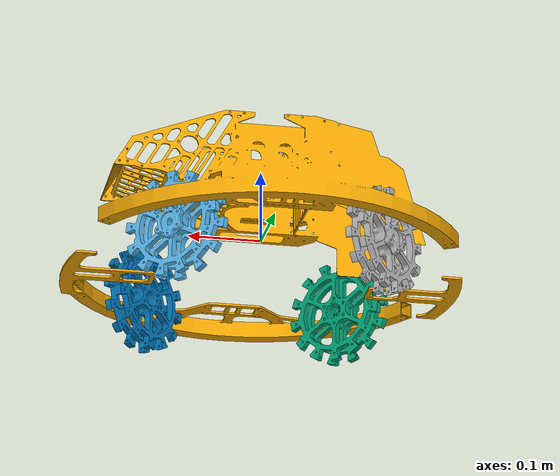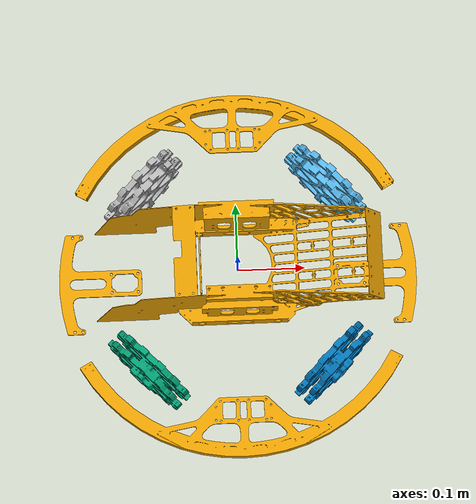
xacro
<?xml version="1.0"?>
<!-- only for ros-control,without gazebo -->
<robot xmlns:xacro="http://www.ros.org/wiki/xacro" name="hero">

    <xacro:arg name="load_chassis" default="true"/>
    <xacro:arg name="use_simulation" default="true"/>
    <xacro:arg name="roller_type" default="realistic"/>

    <xacro:if value="$(arg load_chassis)">
        <xacro:include filename="$(find joint_description)/urdf/kobe/chassis.urdf.xacro"/>
        <xacro:chassis roller_type="$(arg roller_type)"/>
    </xacro:if>

</robot>

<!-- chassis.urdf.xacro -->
<robot xmlns:xacro="http://www.ros.org/wiki/xacro">

  <xacro:include filename="$(find joint_description)/urdf/kobe/omni_wheel.urdf.xacro"/>

  <!-- https://upload.wikimedia.org/wikipedia/commons/5/52/Wheelbase_and_Track.png -->
  <xacro:property name="chassis_radius" value="0.196"/>
  <xacro:property name="wheel_offset_z" value="-0.04373"/>

  <xacro:macro name="chassis" params="roller_type">

      <link name="base_link">
          <inertial>
              <mass value="12.326"/>
              <origin xyz="-0.000932  -0.000668  -0.01"/>
              <inertia ixx="1.924e-1" ixy="-6.458e-4" ixz="5.951352e-3" iyy="2.473e-1"
                       iyz="-7.22e-4" izz="3.187e-1"/>
          </inertial>
          <visual>
              <origin xyz="0 0 0" rpy="0 0 0"/>
              <geometry>
                  <mesh filename="package://rm_description/meshes/standard/base.stl" scale="0.001 0.001 0.001"/>
              </geometry>
          </visual>
          <collision>
              <origin xyz="0 0 0" rpy="0 0 0"/>
              <geometry>
                  <box size="0.392 0.392 0.2"/>
              </geometry>
          </collision>
      </link>

      <xacro:omni_wheel prefix="left_front" connected_to="base_link"
                        wheel_x_offset="${chassis_radius/sqrt(2)}" wheel_y_offset="${chassis_radius/sqrt(2)}"
                        wheel_z_offset="${wheel_offset_z}" rotation_degree="${3*pi/4}" roller_type="${roller_type}"
                        max_effort="5" max_velocity="50"
      />
      <xacro:omni_wheel prefix="right_front" connected_to="base_link"
                        wheel_x_offset="${chassis_radius/sqrt(2)}" wheel_y_offset="${-chassis_radius/sqrt(2)}"
                        wheel_z_offset="${wheel_offset_z}" rotation_degree="${pi/4}" roller_type="${roller_type}"
                        max_effort="5" max_velocity="50"
      />
      <xacro:omni_wheel prefix="left_back" connected_to="base_link"
                        wheel_x_offset="${-chassis_radius/sqrt(2)}" wheel_y_offset="${chassis_radius/sqrt(2)}"
                        wheel_z_offset="${wheel_offset_z}" rotation_degree="${-3*pi/4}" roller_type="${roller_type}"
                        max_effort="5" max_velocity="50"
      />
      <xacro:omni_wheel prefix="right_back" connected_to="base_link"
                        wheel_x_offset="${-chassis_radius/sqrt(2)}" wheel_y_offset="${-chassis_radius/sqrt(2)}"
                        wheel_z_offset="${wheel_offset_z}" rotation_degree="${-pi/4}" roller_type="${roller_type}"
                        max_effort="5" max_velocity="50"
      />
      <xacro:wheel_transmission prefix="left_front" mechanical_reduction="19.2032"/>
      <xacro:wheel_transmission prefix="right_front" mechanical_reduction="19.2032"/>
      <xacro:wheel_transmission prefix="left_back" mechanical_reduction="19.2032"/>
      <xacro:wheel_transmission prefix="right_back" mechanical_reduction="19.2032"/>

  </xacro:macro>

</robot>

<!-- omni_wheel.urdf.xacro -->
<robot xmlns:xacro="http://www.ros.org/wiki/xacro" name="omni_wheel">

  <xacro:property name="wheel_radius" value="0.0762"/>
  <xacro:property name="roller_radius" value="0.009"/>

  <xacro:macro name="roller" params="prefix suffix theta roller_type">
      <xacro:if value="${suffix % 2 == 1}">
          <xacro:property name="joint_y_offset" value="0.009563"/>
      </xacro:if>
      <xacro:if value="${suffix % 2 == 0}">
          <xacro:property name="joint_y_offset" value="-0.009563"/>
      </xacro:if>

      <!--  link  -->
      <link name="${prefix}_roller_${suffix}">
          <xacro:if value="${roller_type=='simple'}">
              <visual>
                  <origin xyz="0 0 0" rpy="0 0 0"/>
                  <geometry>
                      <mesh filename="package://rm_description/meshes/common/omni_roller.stl"
                            scale="0.001 0.001 0.001"/>
                  </geometry>
              </visual>
              <collision>
                  <geometry>
                      <sphere radius="${roller_radius}"/>
                  </geometry>
              </collision>
              <collision>
                  <origin rpy="0 1.57 0" xyz="0 0 0"/>
                  <geometry>
                      <cylinder length="19e-3" radius="8.6e-3"/>
                  </geometry>
              </collision>
          </xacro:if>
          <inertial>
              <mass value="0.0058"/>
              <inertia ixx="270.867e-9" ixy="1.547e-19" ixz="2.133e-19" iyy="291.412e-9" iyz="0.0" izz="291.412e-9"/>
          </inertial>
      </link>

      <joint name="${prefix}_roller_${suffix}_joint" type="continuous">
          <origin
                  xyz="${(wheel_radius-roller_radius)*cos(theta-pi/2)} ${joint_y_offset} ${(wheel_radius-roller_radius)*sin(theta-pi/2)}"
                  rpy="0 ${-theta} 0"/>
          <axis xyz="1 0 0"/>
          <dynamics damping="0.0" friction="0.001"/>
          <parent link="${prefix}_wheel"/>
          <child link="${prefix}_roller_${suffix}"/>
      </joint>

      <gazebo reference="${prefix}_roller_${suffix}">
          <mu1 value="2000.0"/>
          <mu2 value="2000.0"/>
          <kp value="1000000.0"/>
          <kd value="100.0"/>
          <material>Gazebo/Black</material>
      </gazebo>

  </xacro:macro>

  <xacro:macro name="omni_wheel"
               params="prefix connected_to wheel_x_offset wheel_y_offset wheel_z_offset rotation_degree roller_type max_effort max_velocity">
      <!--  link  -->
      <link name="${prefix}_wheel">
          <visual>
              <geometry>
                  <mesh filename="package://rm_description/meshes/common/omni_wheel.stl"
                        scale="0.001 0.001 0.001"/>
              </geometry>
          </visual>
          <inertial>
              <mass value="0.59"/>
              <inertia ixx="1.416e-3" ixy="0.0" ixz="0.0" iyy="2.749e-3" iyz="0.0" izz="1.416e-3"/>
          </inertial>
      </link>

      <!--  joint  -->
      <joint name="${prefix}_wheel_joint" type="revolute">
          <axis xyz="0 1 0"/>
          <origin xyz="${wheel_x_offset} ${wheel_y_offset} ${wheel_offset_z}" rpy="0 0 ${rotation_degree}"/>
          <!--      limit not work while type="continuous"-->
          <limit effort="${max_effort}" velocity="${max_velocity}" lower="-1e9" upper="1e9"/>
          <dynamics damping="0.0" friction="0.05"/>
          <parent link="${connected_to}"/>
          <child link="${prefix}_wheel"/>
      </joint>

      <xacro:unless value="${roller_type=='none'}">
          <xacro:roller prefix="${prefix}" suffix="0" theta="${0*pi/13}" roller_type="${roller_type}"/>
          <xacro:roller prefix="${prefix}" suffix="1" theta="${1*pi/13}" roller_type="${roller_type}"/>
          <xacro:roller prefix="${prefix}" suffix="2" theta="${2*pi/13}" roller_type="${roller_type}"/>
          <xacro:roller prefix="${prefix}" suffix="3" theta="${3*pi/13}" roller_type="${roller_type}"/>
          <xacro:roller prefix="${prefix}" suffix="4" theta="${4*pi/13}" roller_type="${roller_type}"/>
          <xacro:roller prefix="${prefix}" suffix="5" theta="${5*pi/13}" roller_type="${roller_type}"/>
          <xacro:roller prefix="${prefix}" suffix="6" theta="${6*pi/13}" roller_type="${roller_type}"/>
          <xacro:roller prefix="${prefix}" suffix="7" theta="${7*pi/13}" roller_type="${roller_type}"/>
          <xacro:roller prefix="${prefix}" suffix="8" theta="${8*pi/13}" roller_type="${roller_type}"/>
          <xacro:roller prefix="${prefix}" suffix="9" theta="${9*pi/13}" roller_type="${roller_type}"/>
          <xacro:roller prefix="${prefix}" suffix="10" theta="${10*pi/13}" roller_type="${roller_type}"/>
          <xacro:roller prefix="${prefix}" suffix="11" theta="${11*pi/13}" roller_type="${roller_type}"/>
          <xacro:roller prefix="${prefix}" suffix="12" theta="${12*pi/13}" roller_type="${roller_type}"/>
          <xacro:roller prefix="${prefix}" suffix="13" theta="${13*pi/13}" roller_type="${roller_type}"/>
          <xacro:roller prefix="${prefix}" suffix="14" theta="${14*pi/13}" roller_type="${roller_type}"/>
          <xacro:roller prefix="${prefix}" suffix="15" theta="${15*pi/13}" roller_type="${roller_type}"/>
          <xacro:roller prefix="${prefix}" suffix="16" theta="${16*pi/13}" roller_type="${roller_type}"/>
          <xacro:roller prefix="${prefix}" suffix="17" theta="${17*pi/13}" roller_type="${roller_type}"/>
          <xacro:roller prefix="${prefix}" suffix="18" theta="${18*pi/13}" roller_type="${roller_type}"/>
          <xacro:roller prefix="${prefix}" suffix="19" theta="${19*pi/13}" roller_type="${roller_type}"/>
          <xacro:roller prefix="${prefix}" suffix="20" theta="${20*pi/13}" roller_type="${roller_type}"/>
          <xacro:roller prefix="${prefix}" suffix="21" theta="${21*pi/13}" roller_type="${roller_type}"/>
          <xacro:roller prefix="${prefix}" suffix="22" theta="${22*pi/13}" roller_type="${roller_type}"/>
          <xacro:roller prefix="${prefix}" suffix="23" theta="${23*pi/13}" roller_type="${roller_type}"/>
          <xacro:roller prefix="${prefix}" suffix="24" theta="${24*pi/13}" roller_type="${roller_type}"/>
          <xacro:roller prefix="${prefix}" suffix="25" theta="${25*pi/13}" roller_type="${roller_type}"/>
      </xacro:unless>

  </xacro:macro>

  <xacro:macro name="wheel_transmission" params="prefix mechanical_reduction">
      <transmission name="${prefix}_wheel_trans">
          <type>transmission_interface/SimpleTransmission</type>
          <actuator name="${prefix}_wheel_motor">
              <hardwareInterface>hardware_interface/EffortJointInterface</hardwareInterface>
              <mechanicalReduction>${mechanical_reduction}</mechanicalReduction>
          </actuator>
          <joint name="${prefix}_wheel_joint">
              <hardwareInterface>hardware_interface/EffortJointInterface</hardwareInterface>
          </joint>
      </transmission>
  </xacro:macro>

</robot>
